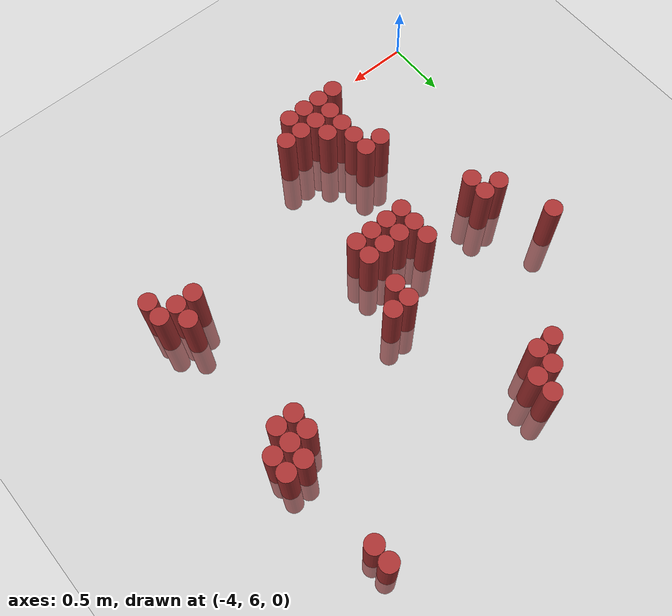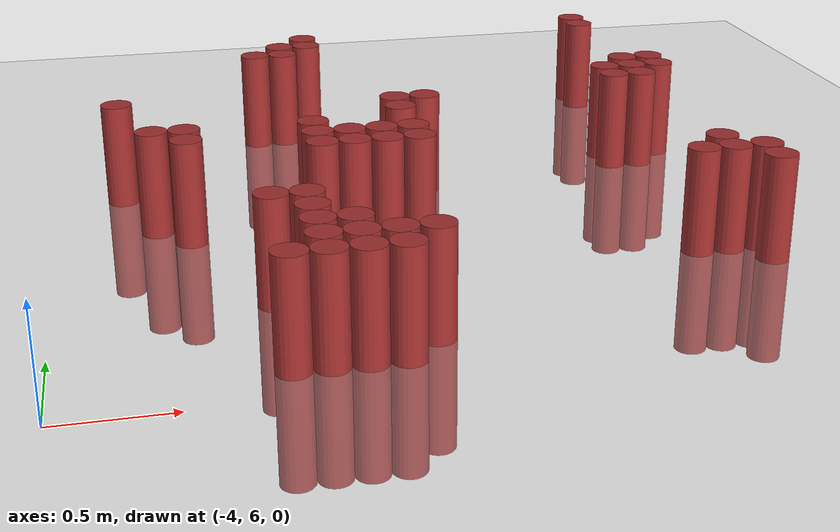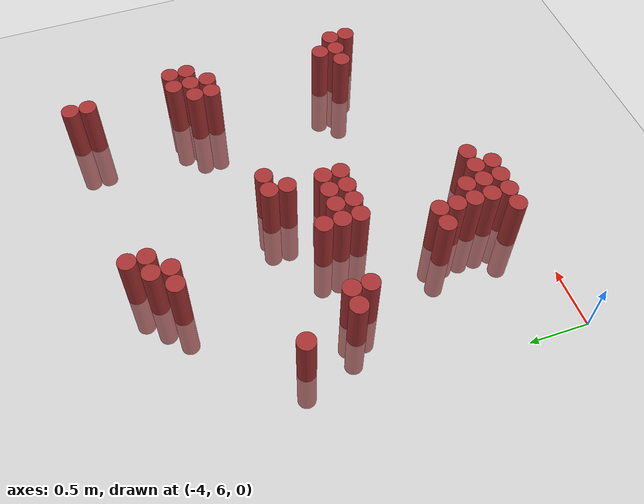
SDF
<sdf version="1.6">
 <world name="default">
  <model name="ground_plane">
   <static>1</static>
   <link name="link">
    <collision name="collision">
     <geometry><plane><normal>0 0 1</normal><size>100 100</size></plane></geometry>
     <surface><friction><ode><mu>100</mu><mu2>50</mu2></ode></friction></surface>
    </collision>
    <visual name="visual">
     <cast_shadows>0</cast_shadows>
     <geometry><plane><normal>0 0 1</normal><size>100 100</size></plane></geometry>
     <material>
      <script><uri>file://media/materials/scripts/gazebo.material</uri><name>Gazebo/Grey</name></script>
     </material>
    </visual>
   </link>
  </model>
  <model name="unit_cylinder_163">
   <static>1</static>
   <pose>-3.675000 8.175000 0.000000 0.000000 0.000000 0.000000</pose>
   <link name="link">
    <inertial>
     <mass>1</mass>
     <inertia><ixx>0.145833</ixx><ixy>0</ixy><ixz>0</ixz><iyy>0.145833</iyy><iyz>0</iyz><izz>0.125</izz></inertia>
    </inertial>
    <collision name="collision">
     <geometry><cylinder><radius>0.075000</radius><length>1</length></cylinder></geometry>
    </collision>
    <visual name="visual">
     <geometry><cylinder><radius>0.075000</radius><length>1</length></cylinder></geometry>
     <material>
      <ambient>0.648000 0.192000 0.192000 1</ambient>
      <diffuse>0.648000 0.192000 0.192000 1</diffuse>
     </material>
     <material>
      <script><name>Gazebo/Grey</name><uri>file://media/materials/scripts/gazebo.material</uri></script>
     </material>
    </visual>
   </link>
  </model>
  <model name="unit_cylinder_164">
   <static>1</static>
   <pose>-3.525000 7.725000 0.000000 0.000000 0.000000 0.000000</pose>
   <link name="link">
    <inertial>
     <mass>1</mass>
     <inertia><ixx>0.145833</ixx><ixy>0</ixy><ixz>0</ixz><iyy>0.145833</iyy><iyz>0</iyz><izz>0.125</izz></inertia>
    </inertial>
    <collision name="collision">
     <geometry><cylinder><radius>0.075000</radius><length>1</length></cylinder></geometry>
    </collision>
    <visual name="visual">
     <geometry><cylinder><radius>0.075000</radius><length>1</length></cylinder></geometry>
     <material>
      <ambient>0.648000 0.192000 0.192000 1</ambient>
      <diffuse>0.648000 0.192000 0.192000 1</diffuse>
     </material>
     <material>
      <script><name>Gazebo/Grey</name><uri>file://media/materials/scripts/gazebo.material</uri></script>
     </material>
    </visual>
   </link>
  </model>
  <model name="unit_cylinder_165">
   <static>1</static>
   <pose>-3.375000 7.575000 0.000000 0.000000 0.000000 0.000000</pose>
   <link name="link">
    <inertial>
     <mass>1</mass>
     <inertia><ixx>0.145833</ixx><ixy>0</ixy><ixz>0</ixz><iyy>0.145833</iyy><iyz>0</iyz><izz>0.125</izz></inertia>
    </inertial>
    <collision name="collision">
     <geometry><cylinder><radius>0.075000</radius><length>1</length></cylinder></geometry>
    </collision>
    <visual name="visual">
     <geometry><cylinder><radius>0.075000</radius><length>1</length></cylinder></geometry>
     <material>
      <ambient>0.648000 0.192000 0.192000 1</ambient>
      <diffuse>0.648000 0.192000 0.192000 1</diffuse>
     </material>
     <material>
      <script><name>Gazebo/Grey</name><uri>file://media/materials/scripts/gazebo.material</uri></script>
     </material>
    </visual>
   </link>
  </model>
  <model name="unit_cylinder_166">
   <static>1</static>
   <pose>-3.375000 7.725000 0.000000 0.000000 0.000000 0.000000</pose>
   <link name="link">
    <inertial>
     <mass>1</mass>
     <inertia><ixx>0.145833</ixx><ixy>0</ixy><ixz>0</ixz><iyy>0.145833</iyy><iyz>0</iyz><izz>0.125</izz></inertia>
    </inertial>
    <collision name="collision">
     <geometry><cylinder><radius>0.075000</radius><length>1</length></cylinder></geometry>
    </collision>
    <visual name="visual">
     <geometry><cylinder><radius>0.075000</radius><length>1</length></cylinder></geometry>
     <material>
      <ambient>0.648000 0.192000 0.192000 1</ambient>
      <diffuse>0.648000 0.192000 0.192000 1</diffuse>
     </material>
     <material>
      <script><name>Gazebo/Grey</name><uri>file://media/materials/scripts/gazebo.material</uri></script>
     </material>
    </visual>
   </link>
  </model>
  <model name="unit_cylinder_170">
   <static>1</static>
   <pose>-3.075000 6.225000 0.000000 0.000000 0.000000 0.000000</pose>
   <link name="link">
    <inertial>
     <mass>1</mass>
     <inertia><ixx>0.145833</ixx><ixy>0</ixy><ixz>0</ixz><iyy>0.145833</iyy><iyz>0</iyz><izz>0.125</izz></inertia>
    </inertial>
    <collision name="collision">
     <geometry><cylinder><radius>0.075000</radius><length>1</length></cylinder></geometry>
    </collision>
    <visual name="visual">
     <geometry><cylinder><radius>0.075000</radius><length>1</length></cylinder></geometry>
     <material>
      <ambient>0.648000 0.192000 0.192000 1</ambient>
      <diffuse>0.648000 0.192000 0.192000 1</diffuse>
     </material>
     <material>
      <script><name>Gazebo/Grey</name><uri>file://media/materials/scripts/gazebo.material</uri></script>
     </material>
    </visual>
   </link>
  </model>
  <model name="unit_cylinder_171">
   <static>1</static>
   <pose>-3.075000 6.825000 0.000000 0.000000 0.000000 0.000000</pose>
   <link name="link">
    <inertial>
     <mass>1</mass>
     <inertia><ixx>0.145833</ixx><ixy>0</ixy><ixz>0</ixz><iyy>0.145833</iyy><iyz>0</iyz><izz>0.125</izz></inertia>
    </inertial>
    <collision name="collision">
     <geometry><cylinder><radius>0.075000</radius><length>1</length></cylinder></geometry>
    </collision>
    <visual name="visual">
     <geometry><cylinder><radius>0.075000</radius><length>1</length></cylinder></geometry>
     <material>
      <ambient>0.648000 0.192000 0.192000 1</ambient>
      <diffuse>0.648000 0.192000 0.192000 1</diffuse>
     </material>
     <material>
      <script><name>Gazebo/Grey</name><uri>file://media/materials/scripts/gazebo.material</uri></script>
     </material>
    </visual>
   </link>
  </model>
  <model name="unit_cylinder_174">
   <static>1</static>
   <pose>-2.925000 6.225000 0.000000 0.000000 0.000000 0.000000</pose>
   <link name="link">
    <inertial>
     <mass>1</mass>
     <inertia><ixx>0.145833</ixx><ixy>0</ixy><ixz>0</ixz><iyy>0.145833</iyy><iyz>0</iyz><izz>0.125</izz></inertia>
    </inertial>
    <collision name="collision">
     <geometry><cylinder><radius>0.075000</radius><length>1</length></cylinder></geometry>
    </collision>
    <visual name="visual">
     <geometry><cylinder><radius>0.075000</radius><length>1</length></cylinder></geometry>
     <material>
      <ambient>0.648000 0.192000 0.192000 1</ambient>
      <diffuse>0.648000 0.192000 0.192000 1</diffuse>
     </material>
     <material>
      <script><name>Gazebo/Grey</name><uri>file://media/materials/scripts/gazebo.material</uri></script>
     </material>
    </visual>
   </link>
  </model>
  <model name="unit_cylinder_175">
   <static>1</static>
   <pose>-2.925000 6.375000 0.000000 0.000000 0.000000 0.000000</pose>
   <link name="link">
    <inertial>
     <mass>1</mass>
     <inertia><ixx>0.145833</ixx><ixy>0</ixy><ixz>0</ixz><iyy>0.145833</iyy><iyz>0</iyz><izz>0.125</izz></inertia>
    </inertial>
    <collision name="collision">
     <geometry><cylinder><radius>0.075000</radius><length>1</length></cylinder></geometry>
    </collision>
    <visual name="visual">
     <geometry><cylinder><radius>0.075000</radius><length>1</length></cylinder></geometry>
     <material>
      <ambient>0.648000 0.192000 0.192000 1</ambient>
      <diffuse>0.648000 0.192000 0.192000 1</diffuse>
     </material>
     <material>
      <script><name>Gazebo/Grey</name><uri>file://media/materials/scripts/gazebo.material</uri></script>
     </material>
    </visual>
   </link>
  </model>
  <model name="unit_cylinder_176">
   <static>1</static>
   <pose>-2.925000 6.525000 0.000000 0.000000 0.000000 0.000000</pose>
   <link name="link">
    <inertial>
     <mass>1</mass>
     <inertia><ixx>0.145833</ixx><ixy>0</ixy><ixz>0</ixz><iyy>0.145833</iyy><iyz>0</iyz><izz>0.125</izz></inertia>
    </inertial>
    <collision name="collision">
     <geometry><cylinder><radius>0.075000</radius><length>1</length></cylinder></geometry>
    </collision>
    <visual name="visual">
     <geometry><cylinder><radius>0.075000</radius><length>1</length></cylinder></geometry>
     <material>
      <ambient>0.648000 0.192000 0.192000 1</ambient>
      <diffuse>0.648000 0.192000 0.192000 1</diffuse>
     </material>
     <material>
      <script><name>Gazebo/Grey</name><uri>file://media/materials/scripts/gazebo.material</uri></script>
     </material>
    </visual>
   </link>
  </model>
  <model name="unit_cylinder_177">
   <static>1</static>
   <pose>-2.925000 6.675000 0.000000 0.000000 0.000000 0.000000</pose>
   <link name="link">
    <inertial>
     <mass>1</mass>
     <inertia><ixx>0.145833</ixx><ixy>0</ixy><ixz>0</ixz><iyy>0.145833</iyy><iyz>0</iyz><izz>0.125</izz></inertia>
    </inertial>
    <collision name="collision">
     <geometry><cylinder><radius>0.075000</radius><length>1</length></cylinder></geometry>
    </collision>
    <visual name="visual">
     <geometry><cylinder><radius>0.075000</radius><length>1</length></cylinder></geometry>
     <material>
      <ambient>0.648000 0.192000 0.192000 1</ambient>
      <diffuse>0.648000 0.192000 0.192000 1</diffuse>
     </material>
     <material>
      <script><name>Gazebo/Grey</name><uri>file://media/materials/scripts/gazebo.material</uri></script>
     </material>
    </visual>
   </link>
  </model>
  <model name="unit_cylinder_178">
   <static>1</static>
   <pose>-2.925000 6.825000 0.000000 0.000000 0.000000 0.000000</pose>
   <link name="link">
    <inertial>
     <mass>1</mass>
     <inertia><ixx>0.145833</ixx><ixy>0</ixy><ixz>0</ixz><iyy>0.145833</iyy><iyz>0</iyz><izz>0.125</izz></inertia>
    </inertial>
    <collision name="collision">
     <geometry><cylinder><radius>0.075000</radius><length>1</length></cylinder></geometry>
    </collision>
    <visual name="visual">
     <geometry><cylinder><radius>0.075000</radius><length>1</length></cylinder></geometry>
     <material>
      <ambient>0.648000 0.192000 0.192000 1</ambient>
      <diffuse>0.648000 0.192000 0.192000 1</diffuse>
     </material>
     <material>
      <script><name>Gazebo/Grey</name><uri>file://media/materials/scripts/gazebo.material</uri></script>
     </material>
    </visual>
   </link>
  </model>
  <model name="unit_cylinder_179">
   <static>1</static>
   <pose>-2.925000 8.925000 0.000000 0.000000 0.000000 0.000000</pose>
   <link name="link">
    <inertial>
     <mass>1</mass>
     <inertia><ixx>0.145833</ixx><ixy>0</ixy><ixz>0</ixz><iyy>0.145833</iyy><iyz>0</iyz><izz>0.125</izz></inertia>
    </inertial>
    <collision name="collision">
     <geometry><cylinder><radius>0.075000</radius><length>1</length></cylinder></geometry>
    </collision>
    <visual name="visual">
     <geometry><cylinder><radius>0.075000</radius><length>1</length></cylinder></geometry>
     <material>
      <ambient>0.648000 0.192000 0.192000 1</ambient>
      <diffuse>0.648000 0.192000 0.192000 1</diffuse>
     </material>
     <material>
      <script><name>Gazebo/Grey</name><uri>file://media/materials/scripts/gazebo.material</uri></script>
     </material>
    </visual>
   </link>
  </model>
  <model name="unit_cylinder_182">
   <static>1</static>
   <pose>-2.775000 6.225000 0.000000 0.000000 0.000000 0.000000</pose>
   <link name="link">
    <inertial>
     <mass>1</mass>
     <inertia><ixx>0.145833</ixx><ixy>0</ixy><ixz>0</ixz><iyy>0.145833</iyy><iyz>0</iyz><izz>0.125</izz></inertia>
    </inertial>
    <collision name="collision">
     <geometry><cylinder><radius>0.075000</radius><length>1</length></cylinder></geometry>
    </collision>
    <visual name="visual">
     <geometry><cylinder><radius>0.075000</radius><length>1</length></cylinder></geometry>
     <material>
      <ambient>0.648000 0.192000 0.192000 1</ambient>
      <diffuse>0.648000 0.192000 0.192000 1</diffuse>
     </material>
     <material>
      <script><name>Gazebo/Grey</name><uri>file://media/materials/scripts/gazebo.material</uri></script>
     </material>
    </visual>
   </link>
  </model>
  <model name="unit_cylinder_183">
   <static>1</static>
   <pose>-2.775000 6.375000 0.000000 0.000000 0.000000 0.000000</pose>
   <link name="link">
    <inertial>
     <mass>1</mass>
     <inertia><ixx>0.145833</ixx><ixy>0</ixy><ixz>0</ixz><iyy>0.145833</iyy><iyz>0</iyz><izz>0.125</izz></inertia>
    </inertial>
    <collision name="collision">
     <geometry><cylinder><radius>0.075000</radius><length>1</length></cylinder></geometry>
    </collision>
    <visual name="visual">
     <geometry><cylinder><radius>0.075000</radius><length>1</length></cylinder></geometry>
     <material>
      <ambient>0.648000 0.192000 0.192000 1</ambient>
      <diffuse>0.648000 0.192000 0.192000 1</diffuse>
     </material>
     <material>
      <script><name>Gazebo/Grey</name><uri>file://media/materials/scripts/gazebo.material</uri></script>
     </material>
    </visual>
   </link>
  </model>
  <model name="unit_cylinder_184">
   <static>1</static>
   <pose>-2.775000 6.525000 0.000000 0.000000 0.000000 0.000000</pose>
   <link name="link">
    <inertial>
     <mass>1</mass>
     <inertia><ixx>0.145833</ixx><ixy>0</ixy><ixz>0</ixz><iyy>0.145833</iyy><iyz>0</iyz><izz>0.125</izz></inertia>
    </inertial>
    <collision name="collision">
     <geometry><cylinder><radius>0.075000</radius><length>1</length></cylinder></geometry>
    </collision>
    <visual name="visual">
     <geometry><cylinder><radius>0.075000</radius><length>1</length></cylinder></geometry>
     <material>
      <ambient>0.648000 0.192000 0.192000 1</ambient>
      <diffuse>0.648000 0.192000 0.192000 1</diffuse>
     </material>
     <material>
      <script><name>Gazebo/Grey</name><uri>file://media/materials/scripts/gazebo.material</uri></script>
     </material>
    </visual>
   </link>
  </model>
  <model name="unit_cylinder_185">
   <static>1</static>
   <pose>-2.775000 7.425000 0.000000 0.000000 0.000000 0.000000</pose>
   <link name="link">
    <inertial>
     <mass>1</mass>
     <inertia><ixx>0.145833</ixx><ixy>0</ixy><ixz>0</ixz><iyy>0.145833</iyy><iyz>0</iyz><izz>0.125</izz></inertia>
    </inertial>
    <collision name="collision">
     <geometry><cylinder><radius>0.075000</radius><length>1</length></cylinder></geometry>
    </collision>
    <visual name="visual">
     <geometry><cylinder><radius>0.075000</radius><length>1</length></cylinder></geometry>
     <material>
      <ambient>0.648000 0.192000 0.192000 1</ambient>
      <diffuse>0.648000 0.192000 0.192000 1</diffuse>
     </material>
     <material>
      <script><name>Gazebo/Grey</name><uri>file://media/materials/scripts/gazebo.material</uri></script>
     </material>
    </visual>
   </link>
  </model>
  <model name="unit_cylinder_186">
   <static>1</static>
   <pose>-2.775000 7.575000 0.000000 0.000000 0.000000 0.000000</pose>
   <link name="link">
    <inertial>
     <mass>1</mass>
     <inertia><ixx>0.145833</ixx><ixy>0</ixy><ixz>0</ixz><iyy>0.145833</iyy><iyz>0</iyz><izz>0.125</izz></inertia>
    </inertial>
    <collision name="collision">
     <geometry><cylinder><radius>0.075000</radius><length>1</length></cylinder></geometry>
    </collision>
    <visual name="visual">
     <geometry><cylinder><radius>0.075000</radius><length>1</length></cylinder></geometry>
     <material>
      <ambient>0.648000 0.192000 0.192000 1</ambient>
      <diffuse>0.648000 0.192000 0.192000 1</diffuse>
     </material>
     <material>
      <script><name>Gazebo/Grey</name><uri>file://media/materials/scripts/gazebo.material</uri></script>
     </material>
    </visual>
   </link>
  </model>
  <model name="unit_cylinder_187">
   <static>1</static>
   <pose>-2.775000 7.725000 0.000000 0.000000 0.000000 0.000000</pose>
   <link name="link">
    <inertial>
     <mass>1</mass>
     <inertia><ixx>0.145833</ixx><ixy>0</ixy><ixz>0</ixz><iyy>0.145833</iyy><iyz>0</iyz><izz>0.125</izz></inertia>
    </inertial>
    <collision name="collision">
     <geometry><cylinder><radius>0.075000</radius><length>1</length></cylinder></geometry>
    </collision>
    <visual name="visual">
     <geometry><cylinder><radius>0.075000</radius><length>1</length></cylinder></geometry>
     <material>
      <ambient>0.648000 0.192000 0.192000 1</ambient>
      <diffuse>0.648000 0.192000 0.192000 1</diffuse>
     </material>
     <material>
      <script><name>Gazebo/Grey</name><uri>file://media/materials/scripts/gazebo.material</uri></script>
     </material>
    </visual>
   </link>
  </model>
  <model name="unit_cylinder_188">
   <static>1</static>
   <pose>-2.775000 8.925000 0.000000 0.000000 0.000000 0.000000</pose>
   <link name="link">
    <inertial>
     <mass>1</mass>
     <inertia><ixx>0.145833</ixx><ixy>0</ixy><ixz>0</ixz><iyy>0.145833</iyy><iyz>0</iyz><izz>0.125</izz></inertia>
    </inertial>
    <collision name="collision">
     <geometry><cylinder><radius>0.075000</radius><length>1</length></cylinder></geometry>
    </collision>
    <visual name="visual">
     <geometry><cylinder><radius>0.075000</radius><length>1</length></cylinder></geometry>
     <material>
      <ambient>0.648000 0.192000 0.192000 1</ambient>
      <diffuse>0.648000 0.192000 0.192000 1</diffuse>
     </material>
     <material>
      <script><name>Gazebo/Grey</name><uri>file://media/materials/scripts/gazebo.material</uri></script>
     </material>
    </visual>
   </link>
  </model>
  <model name="unit_cylinder_189">
   <static>1</static>
   <pose>-2.775000 9.075000 0.000000 0.000000 0.000000 0.000000</pose>
   <link name="link">
    <inertial>
     <mass>1</mass>
     <inertia><ixx>0.145833</ixx><ixy>0</ixy><ixz>0</ixz><iyy>0.145833</iyy><iyz>0</iyz><izz>0.125</izz></inertia>
    </inertial>
    <collision name="collision">
     <geometry><cylinder><radius>0.075000</radius><length>1</length></cylinder></geometry>
    </collision>
    <visual name="visual">
     <geometry><cylinder><radius>0.075000</radius><length>1</length></cylinder></geometry>
     <material>
      <ambient>0.648000 0.192000 0.192000 1</ambient>
      <diffuse>0.648000 0.192000 0.192000 1</diffuse>
     </material>
     <material>
      <script><name>Gazebo/Grey</name><uri>file://media/materials/scripts/gazebo.material</uri></script>
     </material>
    </visual>
   </link>
  </model>
  <model name="unit_cylinder_193">
   <static>1</static>
   <pose>-2.625000 6.225000 0.000000 0.000000 0.000000 0.000000</pose>
   <link name="link">
    <inertial>
     <mass>1</mass>
     <inertia><ixx>0.145833</ixx><ixy>0</ixy><ixz>0</ixz><iyy>0.145833</iyy><iyz>0</iyz><izz>0.125</izz></inertia>
    </inertial>
    <collision name="collision">
     <geometry><cylinder><radius>0.075000</radius><length>1</length></cylinder></geometry>
    </collision>
    <visual name="visual">
     <geometry><cylinder><radius>0.075000</radius><length>1</length></cylinder></geometry>
     <material>
      <ambient>0.648000 0.192000 0.192000 1</ambient>
      <diffuse>0.648000 0.192000 0.192000 1</diffuse>
     </material>
     <material>
      <script><name>Gazebo/Grey</name><uri>file://media/materials/scripts/gazebo.material</uri></script>
     </material>
    </visual>
   </link>
  </model>
  <model name="unit_cylinder_194">
   <static>1</static>
   <pose>-2.625000 6.375000 0.000000 0.000000 0.000000 0.000000</pose>
   <link name="link">
    <inertial>
     <mass>1</mass>
     <inertia><ixx>0.145833</ixx><ixy>0</ixy><ixz>0</ixz><iyy>0.145833</iyy><iyz>0</iyz><izz>0.125</izz></inertia>
    </inertial>
    <collision name="collision">
     <geometry><cylinder><radius>0.075000</radius><length>1</length></cylinder></geometry>
    </collision>
    <visual name="visual">
     <geometry><cylinder><radius>0.075000</radius><length>1</length></cylinder></geometry>
     <material>
      <ambient>0.648000 0.192000 0.192000 1</ambient>
      <diffuse>0.648000 0.192000 0.192000 1</diffuse>
     </material>
     <material>
      <script><name>Gazebo/Grey</name><uri>file://media/materials/scripts/gazebo.material</uri></script>
     </material>
    </visual>
   </link>
  </model>
  <model name="unit_cylinder_195">
   <static>1</static>
   <pose>-2.625000 7.425000 0.000000 0.000000 0.000000 0.000000</pose>
   <link name="link">
    <inertial>
     <mass>1</mass>
     <inertia><ixx>0.145833</ixx><ixy>0</ixy><ixz>0</ixz><iyy>0.145833</iyy><iyz>0</iyz><izz>0.125</izz></inertia>
    </inertial>
    <collision name="collision">
     <geometry><cylinder><radius>0.075000</radius><length>1</length></cylinder></geometry>
    </collision>
    <visual name="visual">
     <geometry><cylinder><radius>0.075000</radius><length>1</length></cylinder></geometry>
     <material>
      <ambient>0.648000 0.192000 0.192000 1</ambient>
      <diffuse>0.648000 0.192000 0.192000 1</diffuse>
     </material>
     <material>
      <script><name>Gazebo/Grey</name><uri>file://media/materials/scripts/gazebo.material</uri></script>
     </material>
    </visual>
   </link>
  </model>
  <model name="unit_cylinder_196">
   <static>1</static>
   <pose>-2.625000 7.575000 0.000000 0.000000 0.000000 0.000000</pose>
   <link name="link">
    <inertial>
     <mass>1</mass>
     <inertia><ixx>0.145833</ixx><ixy>0</ixy><ixz>0</ixz><iyy>0.145833</iyy><iyz>0</iyz><izz>0.125</izz></inertia>
    </inertial>
    <collision name="collision">
     <geometry><cylinder><radius>0.075000</radius><length>1</length></cylinder></geometry>
    </collision>
    <visual name="visual">
     <geometry><cylinder><radius>0.075000</radius><length>1</length></cylinder></geometry>
     <material>
      <ambient>0.648000 0.192000 0.192000 1</ambient>
      <diffuse>0.648000 0.192000 0.192000 1</diffuse>
     </material>
     <material>
      <script><name>Gazebo/Grey</name><uri>file://media/materials/scripts/gazebo.material</uri></script>
     </material>
    </visual>
   </link>
  </model>
  <model name="unit_cylinder_197">
   <static>1</static>
   <pose>-2.625000 9.075000 0.000000 0.000000 0.000000 0.000000</pose>
   <link name="link">
    <inertial>
     <mass>1</mass>
     <inertia><ixx>0.145833</ixx><ixy>0</ixy><ixz>0</ixz><iyy>0.145833</iyy><iyz>0</iyz><izz>0.125</izz></inertia>
    </inertial>
    <collision name="collision">
     <geometry><cylinder><radius>0.075000</radius><length>1</length></cylinder></geometry>
    </collision>
    <visual name="visual">
     <geometry><cylinder><radius>0.075000</radius><length>1</length></cylinder></geometry>
     <material>
      <ambient>0.648000 0.192000 0.192000 1</ambient>
      <diffuse>0.648000 0.192000 0.192000 1</diffuse>
     </material>
     <material>
      <script><name>Gazebo/Grey</name><uri>file://media/materials/scripts/gazebo.material</uri></script>
     </material>
    </visual>
   </link>
  </model>
  <model name="unit_cylinder_198">
   <static>1</static>
   <pose>-2.625000 9.225000 0.000000 0.000000 0.000000 0.000000</pose>
   <link name="link">
    <inertial>
     <mass>1</mass>
     <inertia><ixx>0.145833</ixx><ixy>0</ixy><ixz>0</ixz><iyy>0.145833</iyy><iyz>0</iyz><izz>0.125</izz></inertia>
    </inertial>
    <collision name="collision">
     <geometry><cylinder><radius>0.075000</radius><length>1</length></cylinder></geometry>
    </collision>
    <visual name="visual">
     <geometry><cylinder><radius>0.075000</radius><length>1</length></cylinder></geometry>
     <material>
      <ambient>0.648000 0.192000 0.192000 1</ambient>
      <diffuse>0.648000 0.192000 0.192000 1</diffuse>
     </material>
     <material>
      <script><name>Gazebo/Grey</name><uri>file://media/materials/scripts/gazebo.material</uri></script>
     </material>
    </visual>
   </link>
  </model>
  <model name="unit_cylinder_201">
   <static>1</static>
   <pose>-2.475000 6.375000 0.000000 0.000000 0.000000 0.000000</pose>
   <link name="link">
    <inertial>
     <mass>1</mass>
     <inertia><ixx>0.145833</ixx><ixy>0</ixy><ixz>0</ixz><iyy>0.145833</iyy><iyz>0</iyz><izz>0.125</izz></inertia>
    </inertial>
    <collision name="collision">
     <geometry><cylinder><radius>0.075000</radius><length>1</length></cylinder></geometry>
    </collision>
    <visual name="visual">
     <geometry><cylinder><radius>0.075000</radius><length>1</length></cylinder></geometry>
     <material>
      <ambient>0.648000 0.192000 0.192000 1</ambient>
      <diffuse>0.648000 0.192000 0.192000 1</diffuse>
     </material>
     <material>
      <script><name>Gazebo/Grey</name><uri>file://media/materials/scripts/gazebo.material</uri></script>
     </material>
    </visual>
   </link>
  </model>
  <model name="unit_cylinder_202">
   <static>1</static>
   <pose>-2.475000 7.425000 0.000000 0.000000 0.000000 0.000000</pose>
   <link name="link">
    <inertial>
     <mass>1</mass>
     <inertia><ixx>0.145833</ixx><ixy>0</ixy><ixz>0</ixz><iyy>0.145833</iyy><iyz>0</iyz><izz>0.125</izz></inertia>
    </inertial>
    <collision name="collision">
     <geometry><cylinder><radius>0.075000</radius><length>1</length></cylinder></geometry>
    </collision>
    <visual name="visual">
     <geometry><cylinder><radius>0.075000</radius><length>1</length></cylinder></geometry>
     <material>
      <ambient>0.648000 0.192000 0.192000 1</ambient>
      <diffuse>0.648000 0.192000 0.192000 1</diffuse>
     </material>
     <material>
      <script><name>Gazebo/Grey</name><uri>file://media/materials/scripts/gazebo.material</uri></script>
     </material>
    </visual>
   </link>
  </model>
  <model name="unit_cylinder_203">
   <static>1</static>
   <pose>-2.475000 7.575000 0.000000 0.000000 0.000000 0.000000</pose>
   <link name="link">
    <inertial>
     <mass>1</mass>
     <inertia><ixx>0.145833</ixx><ixy>0</ixy><ixz>0</ixz><iyy>0.145833</iyy><iyz>0</iyz><izz>0.125</izz></inertia>
    </inertial>
    <collision name="collision">
     <geometry><cylinder><radius>0.075000</radius><length>1</length></cylinder></geometry>
    </collision>
    <visual name="visual">
     <geometry><cylinder><radius>0.075000</radius><length>1</length></cylinder></geometry>
     <material>
      <ambient>0.648000 0.192000 0.192000 1</ambient>
      <diffuse>0.648000 0.192000 0.192000 1</diffuse>
     </material>
     <material>
      <script><name>Gazebo/Grey</name><uri>file://media/materials/scripts/gazebo.material</uri></script>
     </material>
    </visual>
   </link>
  </model>
  <model name="unit_cylinder_207">
   <static>1</static>
   <pose>-2.325000 7.425000 0.000000 0.000000 0.000000 0.000000</pose>
   <link name="link">
    <inertial>
     <mass>1</mass>
     <inertia><ixx>0.145833</ixx><ixy>0</ixy><ixz>0</ixz><iyy>0.145833</iyy><iyz>0</iyz><izz>0.125</izz></inertia>
    </inertial>
    <collision name="collision">
     <geometry><cylinder><radius>0.075000</radius><length>1</length></cylinder></geometry>
    </collision>
    <visual name="visual">
     <geometry><cylinder><radius>0.075000</radius><length>1</length></cylinder></geometry>
     <material>
      <ambient>0.648000 0.192000 0.192000 1</ambient>
      <diffuse>0.648000 0.192000 0.192000 1</diffuse>
     </material>
     <material>
      <script><name>Gazebo/Grey</name><uri>file://media/materials/scripts/gazebo.material</uri></script>
     </material>
    </visual>
   </link>
  </model>
  <model name="unit_cylinder_208">
   <static>1</static>
   <pose>-2.325000 7.575000 0.000000 0.000000 0.000000 0.000000</pose>
   <link name="link">
    <inertial>
     <mass>1</mass>
     <inertia><ixx>0.145833</ixx><ixy>0</ixy><ixz>0</ixz><iyy>0.145833</iyy><iyz>0</iyz><izz>0.125</izz></inertia>
    </inertial>
    <collision name="collision">
     <geometry><cylinder><radius>0.075000</radius><length>1</length></cylinder></geometry>
    </collision>
    <visual name="visual">
     <geometry><cylinder><radius>0.075000</radius><length>1</length></cylinder></geometry>
     <material>
      <ambient>0.648000 0.192000 0.192000 1</ambient>
      <diffuse>0.648000 0.192000 0.192000 1</diffuse>
     </material>
     <material>
      <script><name>Gazebo/Grey</name><uri>file://media/materials/scripts/gazebo.material</uri></script>
     </material>
    </visual>
   </link>
  </model>
  <model name="unit_cylinder_209">
   <static>1</static>
   <pose>-2.325000 7.875000 0.000000 0.000000 0.000000 0.000000</pose>
   <link name="link">
    <inertial>
     <mass>1</mass>
     <inertia><ixx>0.145833</ixx><ixy>0</ixy><ixz>0</ixz><iyy>0.145833</iyy><iyz>0</iyz><izz>0.125</izz></inertia>
    </inertial>
    <collision name="collision">
     <geometry><cylinder><radius>0.075000</radius><length>1</length></cylinder></geometry>
    </collision>
    <visual name="visual">
     <geometry><cylinder><radius>0.075000</radius><length>1</length></cylinder></geometry>
     <material>
      <ambient>0.648000 0.192000 0.192000 1</ambient>
      <diffuse>0.648000 0.192000 0.192000 1</diffuse>
     </material>
     <material>
      <script><name>Gazebo/Grey</name><uri>file://media/materials/scripts/gazebo.material</uri></script>
     </material>
    </visual>
   </link>
  </model>
  <model name="unit_cylinder_210">
   <static>1</static>
   <pose>-2.325000 8.025000 0.000000 0.000000 0.000000 0.000000</pose>
   <link name="link">
    <inertial>
     <mass>1</mass>
     <inertia><ixx>0.145833</ixx><ixy>0</ixy><ixz>0</ixz><iyy>0.145833</iyy><iyz>0</iyz><izz>0.125</izz></inertia>
    </inertial>
    <collision name="collision">
     <geometry><cylinder><radius>0.075000</radius><length>1</length></cylinder></geometry>
    </collision>
    <visual name="visual">
     <geometry><cylinder><radius>0.075000</radius><length>1</length></cylinder></geometry>
     <material>
      <ambient>0.648000 0.192000 0.192000 1</ambient>
      <diffuse>0.648000 0.192000 0.192000 1</diffuse>
     </material>
     <material>
      <script><name>Gazebo/Grey</name><uri>file://media/materials/scripts/gazebo.material</uri></script>
     </material>
    </visual>
   </link>
  </model>
  <model name="unit_cylinder_212">
   <static>1</static>
   <pose>-2.175000 8.025000 0.000000 0.000000 0.000000 0.000000</pose>
   <link name="link">
    <inertial>
     <mass>1</mass>
     <inertia><ixx>0.145833</ixx><ixy>0</ixy><ixz>0</ixz><iyy>0.145833</iyy><iyz>0</iyz><izz>0.125</izz></inertia>
    </inertial>
    <collision name="collision">
     <geometry><cylinder><radius>0.075000</radius><length>1</length></cylinder></geometry>
    </collision>
    <visual name="visual">
     <geometry><cylinder><radius>0.075000</radius><length>1</length></cylinder></geometry>
     <material>
      <ambient>0.648000 0.192000 0.192000 1</ambient>
      <diffuse>0.648000 0.192000 0.192000 1</diffuse>
     </material>
     <material>
      <script><name>Gazebo/Grey</name><uri>file://media/materials/scripts/gazebo.material</uri></script>
     </material>
    </visual>
   </link>
  </model>
  <model name="unit_cylinder_218">
   <static>1</static>
   <pose>-1.125000 6.975000 0.000000 0.000000 0.000000 0.000000</pose>
   <link name="link">
    <inertial>
     <mass>1</mass>
     <inertia><ixx>0.145833</ixx><ixy>0</ixy><ixz>0</ixz><iyy>0.145833</iyy><iyz>0</iyz><izz>0.125</izz></inertia>
    </inertial>
    <collision name="collision">
     <geometry><cylinder><radius>0.075000</radius><length>1</length></cylinder></geometry>
    </collision>
    <visual name="visual">
     <geometry><cylinder><radius>0.075000</radius><length>1</length></cylinder></geometry>
     <material>
      <ambient>0.648000 0.192000 0.192000 1</ambient>
      <diffuse>0.648000 0.192000 0.192000 1</diffuse>
     </material>
     <material>
      <script><name>Gazebo/Grey</name><uri>file://media/materials/scripts/gazebo.material</uri></script>
     </material>
    </visual>
   </link>
  </model>
  <model name="unit_cylinder_219">
   <static>1</static>
   <pose>-1.125000 8.175000 0.000000 0.000000 0.000000 0.000000</pose>
   <link name="link">
    <inertial>
     <mass>1</mass>
     <inertia><ixx>0.145833</ixx><ixy>0</ixy><ixz>0</ixz><iyy>0.145833</iyy><iyz>0</iyz><izz>0.125</izz></inertia>
    </inertial>
    <collision name="collision">
     <geometry><cylinder><radius>0.075000</radius><length>1</length></cylinder></geometry>
    </collision>
    <visual name="visual">
     <geometry><cylinder><radius>0.075000</radius><length>1</length></cylinder></geometry>
     <material>
      <ambient>0.648000 0.192000 0.192000 1</ambient>
      <diffuse>0.648000 0.192000 0.192000 1</diffuse>
     </material>
     <material>
      <script><name>Gazebo/Grey</name><uri>file://media/materials/scripts/gazebo.material</uri></script>
     </material>
    </visual>
   </link>
  </model>
  <model name="unit_cylinder_220">
   <static>1</static>
   <pose>-1.125000 8.325000 0.000000 0.000000 0.000000 0.000000</pose>
   <link name="link">
    <inertial>
     <mass>1</mass>
     <inertia><ixx>0.145833</ixx><ixy>0</ixy><ixz>0</ixz><iyy>0.145833</iyy><iyz>0</iyz><izz>0.125</izz></inertia>
    </inertial>
    <collision name="collision">
     <geometry><cylinder><radius>0.075000</radius><length>1</length></cylinder></geometry>
    </collision>
    <visual name="visual">
     <geometry><cylinder><radius>0.075000</radius><length>1</length></cylinder></geometry>
     <material>
      <ambient>0.648000 0.192000 0.192000 1</ambient>
      <diffuse>0.648000 0.192000 0.192000 1</diffuse>
     </material>
     <material>
      <script><name>Gazebo/Grey</name><uri>file://media/materials/scripts/gazebo.material</uri></script>
     </material>
    </visual>
   </link>
  </model>
  <model name="unit_cylinder_221">
   <static>1</static>
   <pose>-0.975000 6.975000 0.000000 0.000000 0.000000 0.000000</pose>
   <link name="link">
    <inertial>
     <mass>1</mass>
     <inertia><ixx>0.145833</ixx><ixy>0</ixy><ixz>0</ixz><iyy>0.145833</iyy><iyz>0</iyz><izz>0.125</izz></inertia>
    </inertial>
    <collision name="collision">
     <geometry><cylinder><radius>0.075000</radius><length>1</length></cylinder></geometry>
    </collision>
    <visual name="visual">
     <geometry><cylinder><radius>0.075000</radius><length>1</length></cylinder></geometry>
     <material>
      <ambient>0.648000 0.192000 0.192000 1</ambient>
      <diffuse>0.648000 0.192000 0.192000 1</diffuse>
     </material>
     <material>
      <script><name>Gazebo/Grey</name><uri>file://media/materials/scripts/gazebo.material</uri></script>
     </material>
    </visual>
   </link>
  </model>
  <model name="unit_cylinder_222">
   <static>1</static>
   <pose>-0.975000 7.125000 0.000000 0.000000 0.000000 0.000000</pose>
   <link name="link">
    <inertial>
     <mass>1</mass>
     <inertia><ixx>0.145833</ixx><ixy>0</ixy><ixz>0</ixz><iyy>0.145833</iyy><iyz>0</iyz><izz>0.125</izz></inertia>
    </inertial>
    <collision name="collision">
     <geometry><cylinder><radius>0.075000</radius><length>1</length></cylinder></geometry>
    </collision>
    <visual name="visual">
     <geometry><cylinder><radius>0.075000</radius><length>1</length></cylinder></geometry>
     <material>
      <ambient>0.648000 0.192000 0.192000 1</ambient>
      <diffuse>0.648000 0.192000 0.192000 1</diffuse>
     </material>
     <material>
      <script><name>Gazebo/Grey</name><uri>file://media/materials/scripts/gazebo.material</uri></script>
     </material>
    </visual>
   </link>
  </model>
  <model name="unit_cylinder_223">
   <static>1</static>
   <pose>-0.975000 8.175000 0.000000 0.000000 0.000000 0.000000</pose>
   <link name="link">
    <inertial>
     <mass>1</mass>
     <inertia><ixx>0.145833</ixx><ixy>0</ixy><ixz>0</ixz><iyy>0.145833</iyy><iyz>0</iyz><izz>0.125</izz></inertia>
    </inertial>
    <collision name="collision">
     <geometry><cylinder><radius>0.075000</radius><length>1</length></cylinder></geometry>
    </collision>
    <visual name="visual">
     <geometry><cylinder><radius>0.075000</radius><length>1</length></cylinder></geometry>
     <material>
      <ambient>0.648000 0.192000 0.192000 1</ambient>
      <diffuse>0.648000 0.192000 0.192000 1</diffuse>
     </material>
     <material>
      <script><name>Gazebo/Grey</name><uri>file://media/materials/scripts/gazebo.material</uri></script>
     </material>
    </visual>
   </link>
  </model>
  <model name="unit_cylinder_224">
   <static>1</static>
   <pose>-0.975000 8.325000 0.000000 0.000000 0.000000 0.000000</pose>
   <link name="link">
    <inertial>
     <mass>1</mass>
     <inertia><ixx>0.145833</ixx><ixy>0</ixy><ixz>0</ixz><iyy>0.145833</iyy><iyz>0</iyz><izz>0.125</izz></inertia>
    </inertial>
    <collision name="collision">
     <geometry><cylinder><radius>0.075000</radius><length>1</length></cylinder></geometry>
    </collision>
    <visual name="visual">
     <geometry><cylinder><radius>0.075000</radius><length>1</length></cylinder></geometry>
     <material>
      <ambient>0.648000 0.192000 0.192000 1</ambient>
      <diffuse>0.648000 0.192000 0.192000 1</diffuse>
     </material>
     <material>
      <script><name>Gazebo/Grey</name><uri>file://media/materials/scripts/gazebo.material</uri></script>
     </material>
    </visual>
   </link>
  </model>
  <model name="unit_cylinder_225">
   <static>1</static>
   <pose>-0.975000 8.475000 0.000000 0.000000 0.000000 0.000000</pose>
   <link name="link">
    <inertial>
     <mass>1</mass>
     <inertia><ixx>0.145833</ixx><ixy>0</ixy><ixz>0</ixz><iyy>0.145833</iyy><iyz>0</iyz><izz>0.125</izz></inertia>
    </inertial>
    <collision name="collision">
     <geometry><cylinder><radius>0.075000</radius><length>1</length></cylinder></geometry>
    </collision>
    <visual name="visual">
     <geometry><cylinder><radius>0.075000</radius><length>1</length></cylinder></geometry>
     <material>
      <ambient>0.648000 0.192000 0.192000 1</ambient>
      <diffuse>0.648000 0.192000 0.192000 1</diffuse>
     </material>
     <material>
      <script><name>Gazebo/Grey</name><uri>file://media/materials/scripts/gazebo.material</uri></script>
     </material>
    </visual>
   </link>
  </model>
  <model name="unit_cylinder_226">
   <static>1</static>
   <pose>-0.975000 9.225000 0.000000 0.000000 0.000000 0.000000</pose>
   <link name="link">
    <inertial>
     <mass>1</mass>
     <inertia><ixx>0.145833</ixx><ixy>0</ixy><ixz>0</ixz><iyy>0.145833</iyy><iyz>0</iyz><izz>0.125</izz></inertia>
    </inertial>
    <collision name="collision">
     <geometry><cylinder><radius>0.075000</radius><length>1</length></cylinder></geometry>
    </collision>
    <visual name="visual">
     <geometry><cylinder><radius>0.075000</radius><length>1</length></cylinder></geometry>
     <material>
      <ambient>0.648000 0.192000 0.192000 1</ambient>
      <diffuse>0.648000 0.192000 0.192000 1</diffuse>
     </material>
     <material>
      <script><name>Gazebo/Grey</name><uri>file://media/materials/scripts/gazebo.material</uri></script>
     </material>
    </visual>
   </link>
  </model>
  <model name="unit_cylinder_227">
   <static>1</static>
   <pose>-0.975000 9.375000 0.000000 0.000000 0.000000 0.000000</pose>
   <link name="link">
    <inertial>
     <mass>1</mass>
     <inertia><ixx>0.145833</ixx><ixy>0</ixy><ixz>0</ixz><iyy>0.145833</iyy><iyz>0</iyz><izz>0.125</izz></inertia>
    </inertial>
    <collision name="collision">
     <geometry><cylinder><radius>0.075000</radius><length>1</length></cylinder></geometry>
    </collision>
    <visual name="visual">
     <geometry><cylinder><radius>0.075000</radius><length>1</length></cylinder></geometry>
     <material>
      <ambient>0.648000 0.192000 0.192000 1</ambient>
      <diffuse>0.648000 0.192000 0.192000 1</diffuse>
     </material>
     <material>
      <script><name>Gazebo/Grey</name><uri>file://media/materials/scripts/gazebo.material</uri></script>
     </material>
    </visual>
   </link>
  </model>
  <model name="unit_cylinder_228">
   <static>1</static>
   <pose>-0.825000 6.825000 0.000000 0.000000 0.000000 0.000000</pose>
   <link name="link">
    <inertial>
     <mass>1</mass>
     <inertia><ixx>0.145833</ixx><ixy>0</ixy><ixz>0</ixz><iyy>0.145833</iyy><iyz>0</iyz><izz>0.125</izz></inertia>
    </inertial>
    <collision name="collision">
     <geometry><cylinder><radius>0.075000</radius><length>1</length></cylinder></geometry>
    </collision>
    <visual name="visual">
     <geometry><cylinder><radius>0.075000</radius><length>1</length></cylinder></geometry>
     <material>
      <ambient>0.648000 0.192000 0.192000 1</ambient>
      <diffuse>0.648000 0.192000 0.192000 1</diffuse>
     </material>
     <material>
      <script><name>Gazebo/Grey</name><uri>file://media/materials/scripts/gazebo.material</uri></script>
     </material>
    </visual>
   </link>
  </model>
  <model name="unit_cylinder_229">
   <static>1</static>
   <pose>-0.825000 6.975000 0.000000 0.000000 0.000000 0.000000</pose>
   <link name="link">
    <inertial>
     <mass>1</mass>
     <inertia><ixx>0.145833</ixx><ixy>0</ixy><ixz>0</ixz><iyy>0.145833</iyy><iyz>0</iyz><izz>0.125</izz></inertia>
    </inertial>
    <collision name="collision">
     <geometry><cylinder><radius>0.075000</radius><length>1</length></cylinder></geometry>
    </collision>
    <visual name="visual">
     <geometry><cylinder><radius>0.075000</radius><length>1</length></cylinder></geometry>
     <material>
      <ambient>0.648000 0.192000 0.192000 1</ambient>
      <diffuse>0.648000 0.192000 0.192000 1</diffuse>
     </material>
     <material>
      <script><name>Gazebo/Grey</name><uri>file://media/materials/scripts/gazebo.material</uri></script>
     </material>
    </visual>
   </link>
  </model>
  <model name="unit_cylinder_230">
   <static>1</static>
   <pose>-0.825000 8.325000 0.000000 0.000000 0.000000 0.000000</pose>
   <link name="link">
    <inertial>
     <mass>1</mass>
     <inertia><ixx>0.145833</ixx><ixy>0</ixy><ixz>0</ixz><iyy>0.145833</iyy><iyz>0</iyz><izz>0.125</izz></inertia>
    </inertial>
    <collision name="collision">
     <geometry><cylinder><radius>0.075000</radius><length>1</length></cylinder></geometry>
    </collision>
    <visual name="visual">
     <geometry><cylinder><radius>0.075000</radius><length>1</length></cylinder></geometry>
     <material>
      <ambient>0.648000 0.192000 0.192000 1</ambient>
      <diffuse>0.648000 0.192000 0.192000 1</diffuse>
     </material>
     <material>
      <script><name>Gazebo/Grey</name><uri>file://media/materials/scripts/gazebo.material</uri></script>
     </material>
    </visual>
   </link>
  </model>
  <model name="unit_cylinder_231">
   <static>1</static>
   <pose>-0.825000 8.475000 0.000000 0.000000 0.000000 0.000000</pose>
   <link name="link">
    <inertial>
     <mass>1</mass>
     <inertia><ixx>0.145833</ixx><ixy>0</ixy><ixz>0</ixz><iyy>0.145833</iyy><iyz>0</iyz><izz>0.125</izz></inertia>
    </inertial>
    <collision name="collision">
     <geometry><cylinder><radius>0.075000</radius><length>1</length></cylinder></geometry>
    </collision>
    <visual name="visual">
     <geometry><cylinder><radius>0.075000</radius><length>1</length></cylinder></geometry>
     <material>
      <ambient>0.648000 0.192000 0.192000 1</ambient>
      <diffuse>0.648000 0.192000 0.192000 1</diffuse>
     </material>
     <material>
      <script><name>Gazebo/Grey</name><uri>file://media/materials/scripts/gazebo.material</uri></script>
     </material>
    </visual>
   </link>
  </model>
 </world>
</sdf>
